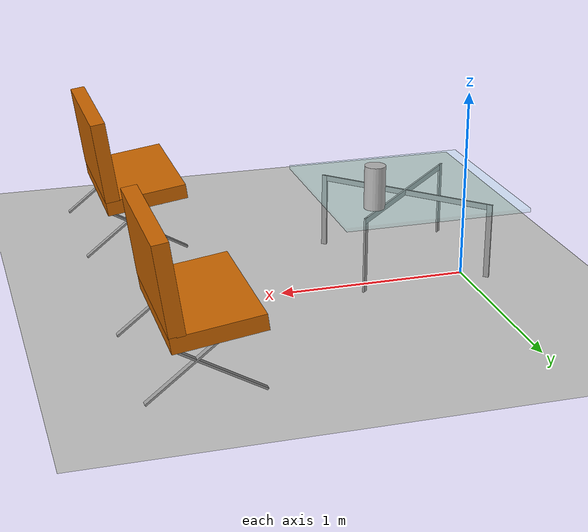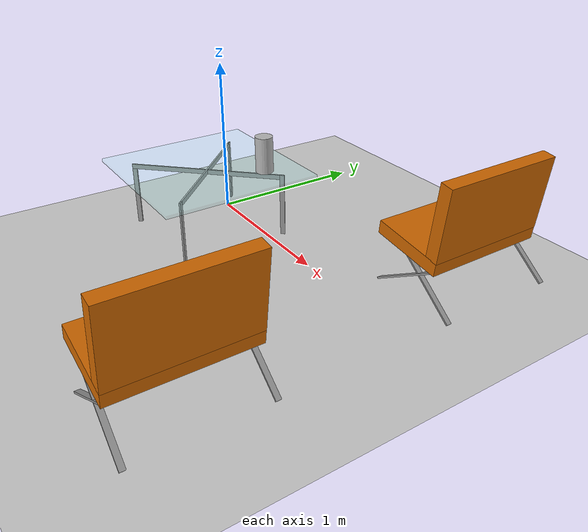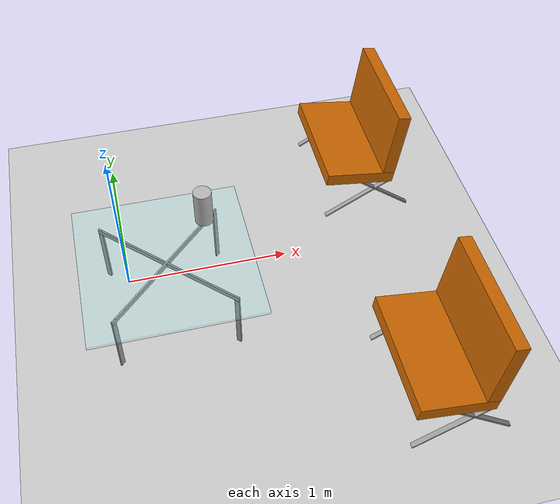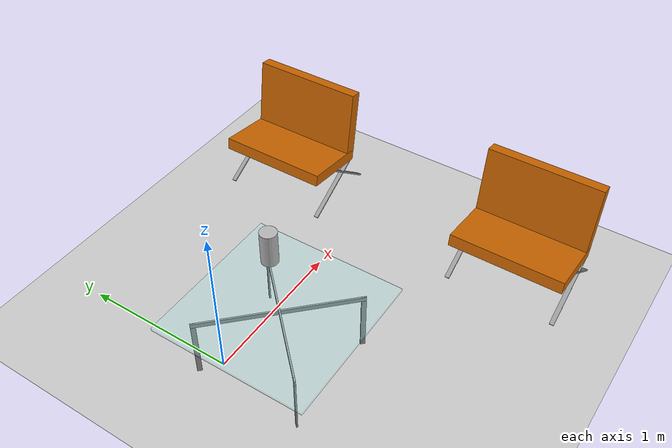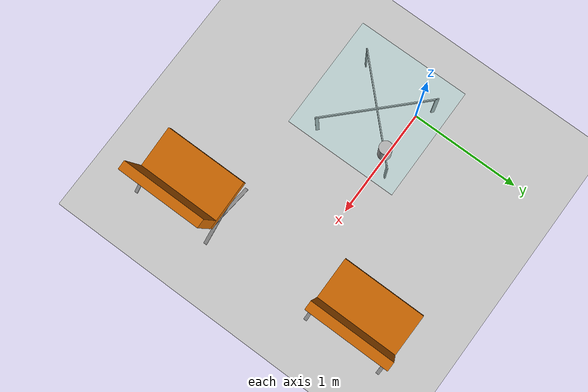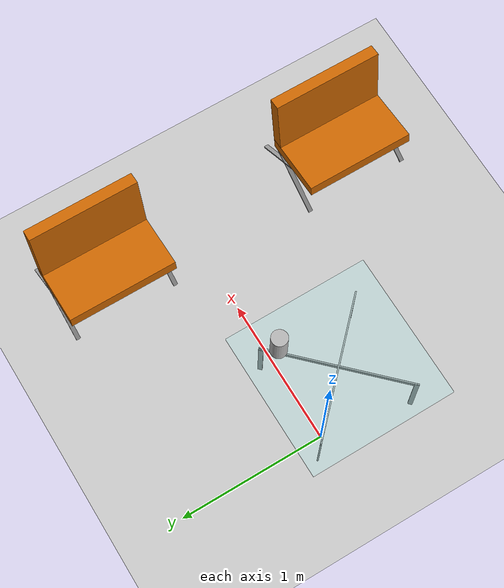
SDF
<sdf version="1.6">
 <world name="default">
  <model name="ground_plane">
   <static>1</static>
   <link name="link">
    <collision name="collision">
     <geometry><plane><normal>0 0 1</normal><size>100 100</size></plane></geometry>
     <surface><friction><ode><mu>100</mu><mu2>50</mu2></ode></friction></surface>
    </collision>
    <visual name="visual">
     <cast_shadows>0</cast_shadows>
     <geometry><plane><normal>0 0 1</normal><size>100 100</size></plane></geometry>
     <material>
      <script><uri>file://media/materials/scripts/gazebo.material</uri><name>Gazebo/Grey</name></script>
     </material>
    </visual>
   </link>
  </model>
  <model name="coffee_table">
   <link name="link_1">
    <pose>1.25379 -1.27559 0.12 0 -0 0.785398</pose>
    <inertial>
     <mass>1</mass>
     <inertia>
      <ixx>0.166667</ixx>
      <ixy>0</ixy>
      <ixz>0</ixz>
      <iyy>0.166667</iyy>
      <iyz>0</iyz>
      <izz>0.166667</izz>
     </inertia>
    </inertial>
    <visual name="visual">
     <geometry><box><size>0.01 0.03 0.41</size></box></geometry>
     <material>
      <lighting>1</lighting>
      <script><uri>file://media/materials/scripts/gazebo.material</uri><name>Gazebo/Grey</name></script>
      <shader type="pixel"><normal_map>__default__</normal_map></shader>
      <ambient>0.75 0.75 0.75 1</ambient>
      <diffuse>0.7 0.7 0.7 1</diffuse>
      <specular>0.01 0.01 0.01 1</specular>
      <emissive>0 0 0 1</emissive>
     </material>
    </visual>
    <collision name="collision">
     <geometry><box><size>0.01 0.03 0.41</size></box></geometry>
     <surface>
      <friction>
       <ode><mu>1</mu><mu2>1</mu2><fdir1>0 0 0</fdir1><slip1>0</slip1><slip2>0</slip2></ode>
       <torsional>
        <coefficient>1</coefficient>
        <patch_radius>0</patch_radius>
        <surface_radius>0</surface_radius>
        <use_patch_radius>1</use_patch_radius>
        <ode><slip>0</slip></ode>
       </torsional>
      </friction>
      <bounce><restitution_coefficient>0</restitution_coefficient><threshold>1e+06</threshold></bounce>
      <contact>
       <collide_without_contact>0</collide_without_contact>
       <collide_without_contact_bitmask>1</collide_without_contact_bitmask>
       <collide_bitmask>1</collide_bitmask>
       <ode>
        <soft_cfm>0</soft_cfm>
        <soft_erp>0.2</soft_erp>
        <kp>1e+13</kp>
        <kd>1</kd>
        <max_vel>0.01</max_vel>
        <min_depth>0</min_depth>
       </ode>
       <bullet>
        <split_impulse>1</split_impulse>
        <split_impulse_penetration_threshold>-0.01</split_impulse_penetration_threshold>
        <soft_cfm>0</soft_cfm>
        <soft_erp>0.2</soft_erp>
        <kp>1e+13</kp>
        <kd>1</kd>
       </bullet>
      </contact>
     </surface>
    </collision>
   </link>
   <link name="link_1_clone">
    <pose>0.567893 -0.589699 0.12 0 -0 0.785398</pose>
    <inertial>
     <mass>1</mass>
     <inertia>
      <ixx>0.166667</ixx>
      <ixy>0</ixy>
      <ixz>0</ixz>
      <iyy>0.166667</iyy>
      <iyz>0</iyz>
      <izz>0.166667</izz>
     </inertia>
    </inertial>
    <visual name="visual">
     <geometry><box><size>0.01 0.03 0.41</size></box></geometry>
     <material>
      <lighting>1</lighting>
      <script><uri>file://media/materials/scripts/gazebo.material</uri><name>Gazebo/Grey</name></script>
      <shader type="pixel"><normal_map>__default__</normal_map></shader>
      <ambient>0.75 0.75 0.75 1</ambient>
      <diffuse>0.7 0.7 0.7 1</diffuse>
      <specular>0.01 0.01 0.01 1</specular>
      <emissive>0 0 0 1</emissive>
     </material>
    </visual>
    <collision name="collision">
     <geometry><box><size>0.01 0.03 0.41</size></box></geometry>
     <surface>
      <friction>
       <ode><mu>1</mu><mu2>1</mu2><fdir1>0 0 0</fdir1><slip1>0</slip1><slip2>0</slip2></ode>
       <torsional>
        <coefficient>1</coefficient>
        <patch_radius>0</patch_radius>
        <surface_radius>0</surface_radius>
        <use_patch_radius>1</use_patch_radius>
        <ode><slip>0</slip></ode>
       </torsional>
      </friction>
      <bounce><restitution_coefficient>0</restitution_coefficient><threshold>1e+06</threshold></bounce>
      <contact>
       <collide_without_contact>0</collide_without_contact>
       <collide_without_contact_bitmask>1</collide_without_contact_bitmask>
       <collide_bitmask>1</collide_bitmask>
       <ode>
        <soft_cfm>0</soft_cfm>
        <soft_erp>0.2</soft_erp>
        <kp>1e+13</kp>
        <kd>1</kd>
        <max_vel>0.01</max_vel>
        <min_depth>0</min_depth>
       </ode>
       <bullet>
        <split_impulse>1</split_impulse>
        <split_impulse_penetration_threshold>-0.01</split_impulse_penetration_threshold>
        <soft_cfm>0</soft_cfm>
        <soft_erp>0.2</soft_erp>
        <kp>1e+13</kp>
        <kd>1</kd>
       </bullet>
      </contact>
     </surface>
    </collision>
   </link>
   <link name="link_1_clone_0">
    <pose>1.25379 -0.589699 0.12 0 0 -0.785398</pose>
    <inertial>
     <mass>1</mass>
     <inertia>
      <ixx>0.166667</ixx>
      <ixy>0</ixy>
      <ixz>0</ixz>
      <iyy>0.166667</iyy>
      <iyz>0</iyz>
      <izz>0.166667</izz>
     </inertia>
    </inertial>
    <visual name="visual">
     <geometry><box><size>0.01 0.03 0.41</size></box></geometry>
     <material>
      <lighting>1</lighting>
      <script><uri>file://media/materials/scripts/gazebo.material</uri><name>Gazebo/Grey</name></script>
      <shader type="pixel"><normal_map>__default__</normal_map></shader>
      <ambient>0.75 0.75 0.75 1</ambient>
      <diffuse>0.7 0.7 0.7 1</diffuse>
      <specular>0.01 0.01 0.01 1</specular>
      <emissive>0 0 0 1</emissive>
     </material>
    </visual>
    <collision name="collision">
     <geometry><box><size>0.01 0.03 0.41</size></box></geometry>
     <surface>
      <friction>
       <ode><mu>1</mu><mu2>1</mu2><fdir1>0 0 0</fdir1><slip1>0</slip1><slip2>0</slip2></ode>
       <torsional>
        <coefficient>1</coefficient>
        <patch_radius>0</patch_radius>
        <surface_radius>0</surface_radius>
        <use_patch_radius>1</use_patch_radius>
        <ode><slip>0</slip></ode>
       </torsional>
      </friction>
      <bounce><restitution_coefficient>0</restitution_coefficient><threshold>1e+06</threshold></bounce>
      <contact>
       <collide_without_contact>0</collide_without_contact>
       <collide_without_contact_bitmask>1</collide_without_contact_bitmask>
       <collide_bitmask>1</collide_bitmask>
       <ode>
        <soft_cfm>0</soft_cfm>
        <soft_erp>0.2</soft_erp>
        <kp>1e+13</kp>
        <kd>1</kd>
        <max_vel>0.01</max_vel>
        <min_depth>0</min_depth>
       </ode>
       <bullet>
        <split_impulse>1</split_impulse>
        <split_impulse_penetration_threshold>-0.01</split_impulse_penetration_threshold>
        <soft_cfm>0</soft_cfm>
        <soft_erp>0.2</soft_erp>
        <kp>1e+13</kp>
        <kd>1</kd>
       </bullet>
      </contact>
     </surface>
    </collision>
   </link>
   <link name="link_1_clone_0_clone">
    <pose>0.567893 -1.27559 0.12 0 0 -0.785398</pose>
    <inertial>
     <mass>1</mass>
     <inertia>
      <ixx>0.166667</ixx>
      <ixy>0</ixy>
      <ixz>0</ixz>
      <iyy>0.166667</iyy>
      <iyz>0</iyz>
      <izz>0.166667</izz>
     </inertia>
    </inertial>
    <visual name="visual">
     <geometry><box><size>0.01 0.03 0.41</size></box></geometry>
     <material>
      <lighting>1</lighting>
      <script><uri>file://media/materials/scripts/gazebo.material</uri><name>Gazebo/Grey</name></script>
      <shader type="pixel"><normal_map>__default__</normal_map></shader>
      <ambient>0.75 0.75 0.75 1</ambient>
      <diffuse>0.7 0.7 0.7 1</diffuse>
      <specular>0.01 0.01 0.01 1</specular>
      <emissive>0 0 0 1</emissive>
     </material>
    </visual>
    <collision name="collision">
     <geometry><box><size>0.01 0.03 0.41</size></box></geometry>
     <surface>
      <friction>
       <ode><mu>1</mu><mu2>1</mu2><fdir1>0 0 0</fdir1><slip1>0</slip1><slip2>0</slip2></ode>
       <torsional>
        <coefficient>1</coefficient>
        <patch_radius>0</patch_radius>
        <surface_radius>0</surface_radius>
        <use_patch_radius>1</use_patch_radius>
        <ode><slip>0</slip></ode>
       </torsional>
      </friction>
      <bounce><restitution_coefficient>0</restitution_coefficient><threshold>1e+06</threshold></bounce>
      <contact>
       <collide_without_contact>0</collide_without_contact>
       <collide_without_contact_bitmask>1</collide_without_contact_bitmask>
       <collide_bitmask>1</collide_bitmask>
       <ode>
        <soft_cfm>0</soft_cfm>
        <soft_erp>0.2</soft_erp>
        <kp>1e+13</kp>
        <kd>1</kd>
        <max_vel>0.01</max_vel>
        <min_depth>0</min_depth>
       </ode>
       <bullet>
        <split_impulse>1</split_impulse>
        <split_impulse_penetration_threshold>-0.01</split_impulse_penetration_threshold>
        <soft_cfm>0</soft_cfm>
        <soft_erp>0.2</soft_erp>
        <kp>1e+13</kp>
        <kd>1</kd>
       </bullet>
      </contact>
     </surface>
    </collision>
   </link>
   <link name="link_2">
    <pose>0.910839 -0.932646 0.31 0 -0 0.785398</pose>
    <inertial>
     <mass>1</mass>
     <inertia>
      <ixx>0.166667</ixx>
      <ixy>0</ixy>
      <ixz>0</ixz>
      <iyy>0.166667</iyy>
      <iyz>0</iyz>
      <izz>0.166667</izz>
     </inertia>
    </inertial>
    <visual name="visual">
     <geometry><box><size>0.01 1 0.03</size></box></geometry>
     <material>
      <lighting>1</lighting>
      <script><uri>file://media/materials/scripts/gazebo.material</uri><name>Gazebo/Grey</name></script>
      <shader type="pixel"><normal_map>__default__</normal_map></shader>
      <ambient>0.75 0.75 0.75 1</ambient>
      <diffuse>0.7 0.7 0.7 1</diffuse>
      <specular>0.01 0.01 0.01 1</specular>
      <emissive>0 0 0 1</emissive>
     </material>
    </visual>
    <collision name="collision">
     <geometry><box><size>0.01 1 0.03</size></box></geometry>
     <surface>
      <friction>
       <ode><mu>1</mu><mu2>1</mu2><fdir1>0 0 0</fdir1><slip1>0</slip1><slip2>0</slip2></ode>
       <torsional>
        <coefficient>1</coefficient>
        <patch_radius>0</patch_radius>
        <surface_radius>0</surface_radius>
        <use_patch_radius>1</use_patch_radius>
        <ode><slip>0</slip></ode>
       </torsional>
      </friction>
      <bounce><restitution_coefficient>0</restitution_coefficient><threshold>1e+06</threshold></bounce>
      <contact>
       <collide_without_contact>0</collide_without_contact>
       <collide_without_contact_bitmask>1</collide_without_contact_bitmask>
       <collide_bitmask>1</collide_bitmask>
       <ode>
        <soft_cfm>0</soft_cfm>
        <soft_erp>0.2</soft_erp>
        <kp>1e+13</kp>
        <kd>1</kd>
        <max_vel>0.01</max_vel>
        <min_depth>0</min_depth>
       </ode>
       <bullet>
        <split_impulse>1</split_impulse>
        <split_impulse_penetration_threshold>-0.01</split_impulse_penetration_threshold>
        <soft_cfm>0</soft_cfm>
        <soft_erp>0.2</soft_erp>
        <kp>1e+13</kp>
        <kd>1</kd>
       </bullet>
      </contact>
     </surface>
    </collision>
   </link>
   <link name="link_2_clone">
    <pose>0.910839 -0.932646 0.31 0 0 -0.785398</pose>
    <inertial>
     <mass>1</mass>
     <inertia>
      <ixx>0.166667</ixx>
      <ixy>0</ixy>
      <ixz>0</ixz>
      <iyy>0.166667</iyy>
      <iyz>0</iyz>
      <izz>0.166667</izz>
     </inertia>
    </inertial>
    <visual name="visual">
     <geometry><box><size>0.01 1 0.03</size></box></geometry>
     <material>
      <lighting>1</lighting>
      <script><uri>file://media/materials/scripts/gazebo.material</uri><name>Gazebo/Grey</name></script>
      <shader type="pixel"><normal_map>__default__</normal_map></shader>
      <ambient>0.75 0.75 0.75 1</ambient>
      <diffuse>0.7 0.7 0.7 1</diffuse>
      <specular>0.01 0.01 0.01 1</specular>
      <emissive>0 0 0 1</emissive>
     </material>
    </visual>
    <collision name="collision">
     <geometry><box><size>0.01 1 0.03</size></box></geometry>
     <surface>
      <friction>
       <ode><mu>1</mu><mu2>1</mu2><fdir1>0 0 0</fdir1><slip1>0</slip1><slip2>0</slip2></ode>
       <torsional>
        <coefficient>1</coefficient>
        <patch_radius>0</patch_radius>
        <surface_radius>0</surface_radius>
        <use_patch_radius>1</use_patch_radius>
        <ode><slip>0</slip></ode>
       </torsional>
      </friction>
      <bounce><restitution_coefficient>0</restitution_coefficient><threshold>1e+06</threshold></bounce>
      <contact>
       <collide_without_contact>0</collide_without_contact>
       <collide_without_contact_bitmask>1</collide_without_contact_bitmask>
       <collide_bitmask>1</collide_bitmask>
       <ode>
        <soft_cfm>0</soft_cfm>
        <soft_erp>0.2</soft_erp>
        <kp>1e+13</kp>
        <kd>1</kd>
        <max_vel>0.01</max_vel>
        <min_depth>0</min_depth>
       </ode>
       <bullet>
        <split_impulse>1</split_impulse>
        <split_impulse_penetration_threshold>-0.01</split_impulse_penetration_threshold>
        <soft_cfm>0</soft_cfm>
        <soft_erp>0.2</soft_erp>
        <kp>1e+13</kp>
        <kd>1</kd>
       </bullet>
      </contact>
     </surface>
    </collision>
   </link>
   <link name="link_4">
    <pose>0.910839 -0.932646 0.335 0 -0 0</pose>
    <inertial>
     <mass>1</mass>
     <inertia>
      <ixx>0.166667</ixx>
      <ixy>0</ixy>
      <ixz>0</ixz>
      <iyy>0.166667</iyy>
      <iyz>0</iyz>
      <izz>0.166667</izz>
     </inertia>
    </inertial>
    <visual name="visual">
     <geometry><box><size>1 1 0.02</size></box></geometry>
     <material>
      <lighting>1</lighting>
      <script><uri>file://media/materials/scripts/gazebo.material</uri><name>Gazebo/Grey</name></script>
      <shader type="pixel"><normal_map>__default__</normal_map></shader>
      <ambient>0.6 1 1 1</ambient>
      <diffuse>0.7 0.7 0.7 1</diffuse>
      <specular>0.01 0.01 0.01 1</specular>
      <emissive>0 0 0 1</emissive>
     </material>
     <transparency>0.85</transparency>
    </visual>
    <collision name="collision">
     <geometry><box><size>1 1 0.02</size></box></geometry>
     <surface>
      <friction>
       <ode><mu>1</mu><mu2>1</mu2><fdir1>0 0 0</fdir1><slip1>0</slip1><slip2>0</slip2></ode>
       <torsional>
        <coefficient>1</coefficient>
        <patch_radius>0</patch_radius>
        <surface_radius>0</surface_radius>
        <use_patch_radius>1</use_patch_radius>
        <ode><slip>0</slip></ode>
       </torsional>
      </friction>
      <bounce><restitution_coefficient>0</restitution_coefficient><threshold>1e+06</threshold></bounce>
      <contact>
       <collide_without_contact>0</collide_without_contact>
       <collide_without_contact_bitmask>1</collide_without_contact_bitmask>
       <collide_bitmask>1</collide_bitmask>
       <ode>
        <soft_cfm>0</soft_cfm>
        <soft_erp>0.2</soft_erp>
        <kp>1e+13</kp>
        <kd>1</kd>
        <max_vel>0.01</max_vel>
        <min_depth>0</min_depth>
       </ode>
       <bullet>
        <split_impulse>1</split_impulse>
        <split_impulse_penetration_threshold>-0.01</split_impulse_penetration_threshold>
        <soft_cfm>0</soft_cfm>
        <soft_erp>0.2</soft_erp>
        <kp>1e+13</kp>
        <kd>1</kd>
       </bullet>
      </contact>
     </surface>
    </collision>
   </link>
   <joint name="link_2_JOINT_0_0" type="fixed">
    <parent>link_2</parent>
    <child>link_4</child>
    <physics>
     <ode><limit><cfm>0</cfm><erp>0.2</erp></limit><suspension><cfm>0</cfm><erp>0.2</erp></suspension></ode>
    </physics>
   </joint>
   <joint name="link_2_JOINT_0" type="fixed">
    <parent>link_2</parent>
    <child>link_1</child>
    <physics>
     <ode><limit><cfm>0</cfm><erp>0.2</erp></limit><suspension><cfm>0</cfm><erp>0.2</erp></suspension></ode>
    </physics>
   </joint>
   <joint name="link_2_JOINT_1_0" type="fixed">
    <parent>link_2</parent>
    <child>link_2_clone</child>
    <physics>
     <ode><limit><cfm>0</cfm><erp>0.2</erp></limit><suspension><cfm>0</cfm><erp>0.2</erp></suspension></ode>
    </physics>
   </joint>
   <joint name="link_2_JOINT_1" type="fixed">
    <parent>link_2</parent>
    <child>link_1_clone</child>
    <physics>
     <ode><limit><cfm>0</cfm><erp>0.2</erp></limit><suspension><cfm>0</cfm><erp>0.2</erp></suspension></ode>
    </physics>
   </joint>
   <joint name="link_2_clone_JOINT_0" type="fixed">
    <parent>link_2_clone</parent>
    <child>link_4</child>
    <physics>
     <ode><limit><cfm>0</cfm><erp>0.2</erp></limit><suspension><cfm>0</cfm><erp>0.2</erp></suspension></ode>
    </physics>
   </joint>
   <joint name="link_2_clone_JOINT_2" type="fixed">
    <parent>link_2_clone</parent>
    <child>link_1_clone_0_clone</child>
    <physics>
     <ode><limit><cfm>0</cfm><erp>0.2</erp></limit><suspension><cfm>0</cfm><erp>0.2</erp></suspension></ode>
    </physics>
   </joint>
   <joint name="link_2_clone_JOINT_3" type="fixed">
    <parent>link_2_clone</parent>
    <child>link_1_clone_0</child>
    <physics>
     <ode><limit><cfm>0</cfm><erp>0.2</erp></limit><suspension><cfm>0</cfm><erp>0.2</erp></suspension></ode>
    </physics>
   </joint>
   <static>0</static>
   <pose>-0.679275 0.675921 0.084997 0 -2e-06 0.004869</pose>
  </model>
  <model name="lounge_chair">
   <link name="link_0">
    <pose>-0.096052 0.046667 0.513201 0 -0.15 0</pose>
    <inertial>
     <mass>0.544036</mass>
     <inertia>
      <ixx>0.0258036</ixx>
      <ixy>0</ixy>
      <ixz>0</ixz>
      <iyy>0.016623</iyy>
      <iyz>0</iyz>
      <izz>0.0418228</izz>
     </inertia>
    </inertial>
    <visual name="visual">
     <geometry><box><size>0.45 0.75 0.08</size></box></geometry>
     <material>
      <lighting>1</lighting>
      <script><uri>file://media/materials/scripts/gazebo.material</uri><name>Gazebo/Grey</name></script>
      <shader type="pixel"><normal_map>__default__</normal_map></shader>
      <ambient>0.8 0.4 0 1</ambient>
      <diffuse>0.7 0.7 0.7 1</diffuse>
      <specular>0.01 0.01 0.01 1</specular>
      <emissive>0 0 0 1</emissive>
     </material>
    </visual>
    <collision name="collision">
     <geometry><box><size>0.45 0.75 0.08</size></box></geometry>
     <surface>
      <friction>
       <ode><mu>1</mu><mu2>1</mu2><fdir1>0 0 0</fdir1><slip1>0</slip1><slip2>0</slip2></ode>
       <torsional>
        <coefficient>1</coefficient>
        <patch_radius>0</patch_radius>
        <surface_radius>0</surface_radius>
        <use_patch_radius>1</use_patch_radius>
        <ode><slip>0</slip></ode>
       </torsional>
      </friction>
      <bounce><restitution_coefficient>0</restitution_coefficient><threshold>1e+06</threshold></bounce>
      <contact>
       <collide_without_contact>0</collide_without_contact>
       <collide_without_contact_bitmask>1</collide_without_contact_bitmask>
       <collide_bitmask>1</collide_bitmask>
       <ode>
        <soft_cfm>0</soft_cfm>
        <soft_erp>0.2</soft_erp>
        <kp>1e+13</kp>
        <kd>1</kd>
        <max_vel>0.01</max_vel>
        <min_depth>0</min_depth>
       </ode>
       <bullet>
        <split_impulse>1</split_impulse>
        <split_impulse_penetration_threshold>-0.01</split_impulse_penetration_threshold>
        <soft_cfm>0</soft_cfm>
        <soft_erp>0.2</soft_erp>
        <kp>1e+13</kp>
        <kd>1</kd>
       </bullet>
      </contact>
     </surface>
    </collision>
   </link>
   <link name="link_0_clone">
    <pose>-0.319159 0.046667 0.742889 3.14159 -1.42159 3.14159</pose>
    <inertial>
     <mass>0.41437</mass>
     <inertia>
      <ixx>0.0196446</ixx>
      <ixy>0</ixy>
      <ixz>0</ixz>
      <iyy>0.00743262</iyy>
      <iyz>0</iyz>
      <izz>0.0266352</izz>
     </inertia>
    </inertial>
    <visual name="visual">
     <geometry><box><size>0.45 0.75 0.08</size></box></geometry>
     <material>
      <lighting>1</lighting>
      <script><uri>file://media/materials/scripts/gazebo.material</uri><name>Gazebo/Grey</name></script>
      <shader type="pixel"><normal_map>__default__</normal_map></shader>
      <ambient>0.8 0.4 0 1</ambient>
      <diffuse>0.7 0.7 0.7 1</diffuse>
      <specular>0.01 0.01 0.01 1</specular>
      <emissive>0 0 0 1</emissive>
     </material>
    </visual>
    <collision name="collision">
     <geometry><box><size>0.45 0.75 0.08</size></box></geometry>
     <surface>
      <friction>
       <ode><mu>1</mu><mu2>1</mu2><fdir1>0 0 0</fdir1><slip1>0</slip1><slip2>0</slip2></ode>
       <torsional>
        <coefficient>1</coefficient>
        <patch_radius>0</patch_radius>
        <surface_radius>0</surface_radius>
        <use_patch_radius>1</use_patch_radius>
        <ode><slip>0</slip></ode>
       </torsional>
      </friction>
      <bounce><restitution_coefficient>0</restitution_coefficient><threshold>1e+06</threshold></bounce>
      <contact>
       <collide_without_contact>0</collide_without_contact>
       <collide_without_contact_bitmask>1</collide_without_contact_bitmask>
       <collide_bitmask>1</collide_bitmask>
       <ode>
        <soft_cfm>0</soft_cfm>
        <soft_erp>0.2</soft_erp>
        <kp>1e+13</kp>
        <kd>1</kd>
        <max_vel>0.01</max_vel>
        <min_depth>0</min_depth>
       </ode>
       <bullet>
        <split_impulse>1</split_impulse>
        <split_impulse_penetration_threshold>-0.01</split_impulse_penetration_threshold>
        <soft_cfm>0</soft_cfm>
        <soft_erp>0.2</soft_erp>
        <kp>1e+13</kp>
        <kd>1</kd>
       </bullet>
      </contact>
     </surface>
    </collision>
   </link>
   <link name="link_2">
    <pose>-0.087065 -0.312224 0.333962 0 -1.05637 0</pose>
    <inertial>
     <mass>0.489913</mass>
     <inertia>
      <ixx>0.00990087</ixx>
      <ixy>0</ixy>
      <ixz>0</ixz>
      <iyy>0.00980288</iyy>
      <iyz>0</iyz>
      <izz>0.00010615</izz>
     </inertia>
    </inertial>
    <visual name="visual">
     <geometry><box><size>0.01 0.03 0.489911</size></box></geometry>
     <material>
      <lighting>1</lighting>
      <script><uri>file://media/materials/scripts/gazebo.material</uri><name>Gazebo/Grey</name></script>
      <shader type="pixel"><normal_map>__default__</normal_map></shader>
      <ambient>0.75 0.75 0.75 1</ambient>
      <diffuse>0.7 0.7 0.7 1</diffuse>
      <specular>0.01 0.01 0.01 1</specular>
      <emissive>0 0 0 1</emissive>
     </material>
    </visual>
    <collision name="collision">
     <geometry><box><size>0.01 0.03 0.489911</size></box></geometry>
     <surface>
      <friction>
       <ode><mu>1</mu><mu2>1</mu2><fdir1>0 0 0</fdir1><slip1>0</slip1><slip2>0</slip2></ode>
       <torsional>
        <coefficient>1</coefficient>
        <patch_radius>0</patch_radius>
        <surface_radius>0</surface_radius>
        <use_patch_radius>1</use_patch_radius>
        <ode><slip>0</slip></ode>
       </torsional>
      </friction>
      <bounce><restitution_coefficient>0</restitution_coefficient><threshold>1e+06</threshold></bounce>
      <contact>
       <collide_without_contact>0</collide_without_contact>
       <collide_without_contact_bitmask>1</collide_without_contact_bitmask>
       <collide_bitmask>1</collide_bitmask>
       <ode>
        <soft_cfm>0</soft_cfm>
        <soft_erp>0.2</soft_erp>
        <kp>1e+13</kp>
        <kd>1</kd>
        <max_vel>0.01</max_vel>
        <min_depth>0</min_depth>
       </ode>
       <bullet>
        <split_impulse>1</split_impulse>
        <split_impulse_penetration_threshold>-0.01</split_impulse_penetration_threshold>
        <soft_cfm>0</soft_cfm>
        <soft_erp>0.2</soft_erp>
        <kp>1e+13</kp>
        <kd>1</kd>
       </bullet>
      </contact>
     </surface>
    </collision>
   </link>
   <link name="link_2_clone">
    <pose>-0.087065 0.406318 0.333962 0 -1.05637 0</pose>
    <inertial>
     <mass>0.489913</mass>
     <inertia>
      <ixx>0.00990087</ixx>
      <ixy>0</ixy>
      <ixz>0</ixz>
      <iyy>0.00980288</iyy>
      <iyz>0</iyz>
      <izz>0.00010615</izz>
     </inertia>
    </inertial>
    <visual name="visual">
     <geometry><box><size>0.01 0.03 0.489911</size></box></geometry>
     <material>
      <lighting>1</lighting>
      <script><uri>file://media/materials/scripts/gazebo.material</uri><name>Gazebo/Grey</name></script>
      <shader type="pixel"><normal_map>__default__</normal_map></shader>
      <ambient>0.75 0.75 0.75 1</ambient>
      <diffuse>0.7 0.7 0.7 1</diffuse>
      <specular>0.01 0.01 0.01 1</specular>
      <emissive>0 0 0 1</emissive>
     </material>
    </visual>
    <collision name="collision">
     <geometry><box><size>0.01 0.03 0.489911</size></box></geometry>
     <surface>
      <friction>
       <ode><mu>1</mu><mu2>1</mu2><fdir1>0 0 0</fdir1><slip1>0</slip1><slip2>0</slip2></ode>
       <torsional>
        <coefficient>1</coefficient>
        <patch_radius>0</patch_radius>
        <surface_radius>0</surface_radius>
        <use_patch_radius>1</use_patch_radius>
        <ode><slip>0</slip></ode>
       </torsional>
      </friction>
      <bounce><restitution_coefficient>0</restitution_coefficient><threshold>1e+06</threshold></bounce>
      <contact>
       <collide_without_contact>0</collide_without_contact>
       <collide_without_contact_bitmask>1</collide_without_contact_bitmask>
       <collide_bitmask>1</collide_bitmask>
       <ode>
        <soft_cfm>0</soft_cfm>
        <soft_erp>0.2</soft_erp>
        <kp>1e+13</kp>
        <kd>1</kd>
        <max_vel>0.01</max_vel>
        <min_depth>0</min_depth>
       </ode>
       <bullet>
        <split_impulse>1</split_impulse>
        <split_impulse_penetration_threshold>-0.01</split_impulse_penetration_threshold>
        <soft_cfm>0</soft_cfm>
        <soft_erp>0.2</soft_erp>
        <kp>1e+13</kp>
        <kd>1</kd>
       </bullet>
      </contact>
     </surface>
    </collision>
   </link>
   <link name="link_2_clone_0">
    <pose>-0.244757 0.405854 0.361914 -3.14159 -0.893765 -3.14159</pose>
    <inertial>
     <mass>0.489913</mass>
     <inertia>
      <ixx>0.00990087</ixx>
      <ixy>0</ixy>
      <ixz>0</ixz>
      <iyy>0.00980288</iyy>
      <iyz>0</iyz>
      <izz>0.00010615</izz>
     </inertia>
    </inertial>
    <visual name="visual">
     <geometry><box><size>0.01 0.03 0.489911</size></box></geometry>
     <material>
      <lighting>1</lighting>
      <script><uri>file://media/materials/scripts/gazebo.material</uri><name>Gazebo/Grey</name></script>
      <shader type="pixel"><normal_map>__default__</normal_map></shader>
      <ambient>0.75 0.75 0.75 1</ambient>
      <diffuse>0.7 0.7 0.7 1</diffuse>
      <specular>0.01 0.01 0.01 1</specular>
      <emissive>0 0 0 1</emissive>
     </material>
    </visual>
    <collision name="collision">
     <geometry><box><size>0.01 0.03 0.489911</size></box></geometry>
     <surface>
      <friction>
       <ode><mu>1</mu><mu2>1</mu2><fdir1>0 0 0</fdir1><slip1>0</slip1><slip2>0</slip2></ode>
       <torsional>
        <coefficient>1</coefficient>
        <patch_radius>0</patch_radius>
        <surface_radius>0</surface_radius>
        <use_patch_radius>1</use_patch_radius>
        <ode><slip>0</slip></ode>
       </torsional>
      </friction>
      <bounce><restitution_coefficient>0</restitution_coefficient><threshold>1e+06</threshold></bounce>
      <contact>
       <collide_without_contact>0</collide_without_contact>
       <collide_without_contact_bitmask>1</collide_without_contact_bitmask>
       <collide_bitmask>1</collide_bitmask>
       <ode>
        <soft_cfm>0</soft_cfm>
        <soft_erp>0.2</soft_erp>
        <kp>1e+13</kp>
        <kd>1</kd>
        <max_vel>0.01</max_vel>
        <min_depth>0</min_depth>
       </ode>
       <bullet>
        <split_impulse>1</split_impulse>
        <split_impulse_penetration_threshold>-0.01</split_impulse_penetration_threshold>
        <soft_cfm>0</soft_cfm>
        <soft_erp>0.2</soft_erp>
        <kp>1e+13</kp>
        <kd>1</kd>
       </bullet>
      </contact>
     </surface>
    </collision>
   </link>
   <link name="link_2_clone_0_clone">
    <pose>-0.244739 -0.313332 0.361914 -3.14159 -0.893765 -3.14159</pose>
    <inertial>
     <mass>0.489913</mass>
     <inertia>
      <ixx>0.00990087</ixx>
      <ixy>0</ixy>
      <ixz>0</ixz>
      <iyy>0.00980288</iyy>
      <iyz>0</iyz>
      <izz>0.00010615</izz>
     </inertia>
    </inertial>
    <visual name="visual">
     <geometry><box><size>0.01 0.03 0.489911</size></box></geometry>
     <material>
      <lighting>1</lighting>
      <script><uri>file://media/materials/scripts/gazebo.material</uri><name>Gazebo/Grey</name></script>
      <shader type="pixel"><normal_map>__default__</normal_map></shader>
      <ambient>0.75 0.75 0.75 1</ambient>
      <diffuse>0.7 0.7 0.7 1</diffuse>
      <specular>0.01 0.01 0.01 1</specular>
      <emissive>0 0 0 1</emissive>
     </material>
    </visual>
    <collision name="collision">
     <geometry><box><size>0.01 0.03 0.489911</size></box></geometry>
     <surface>
      <friction>
       <ode><mu>1</mu><mu2>1</mu2><fdir1>0 0 0</fdir1><slip1>0</slip1><slip2>0</slip2></ode>
       <torsional>
        <coefficient>1</coefficient>
        <patch_radius>0</patch_radius>
        <surface_radius>0</surface_radius>
        <use_patch_radius>1</use_patch_radius>
        <ode><slip>0</slip></ode>
       </torsional>
      </friction>
      <bounce><restitution_coefficient>0</restitution_coefficient><threshold>1e+06</threshold></bounce>
      <contact>
       <collide_without_contact>0</collide_without_contact>
       <collide_without_contact_bitmask>1</collide_without_contact_bitmask>
       <collide_bitmask>1</collide_bitmask>
       <ode>
        <soft_cfm>0</soft_cfm>
        <soft_erp>0.2</soft_erp>
        <kp>1e+13</kp>
        <kd>1</kd>
        <max_vel>0.01</max_vel>
        <min_depth>0</min_depth>
       </ode>
       <bullet>
        <split_impulse>1</split_impulse>
        <split_impulse_penetration_threshold>-0.01</split_impulse_penetration_threshold>
        <soft_cfm>0</soft_cfm>
        <soft_erp>0.2</soft_erp>
        <kp>1e+13</kp>
        <kd>1</kd>
       </bullet>
      </contact>
     </surface>
    </collision>
   </link>
   <joint name="link_0_JOINT_10" type="fixed">
    <parent>link_0</parent>
    <child>link_2_clone</child>
    <physics>
     <ode><limit><cfm>0</cfm><erp>0.2</erp></limit><suspension><cfm>0</cfm><erp>0.2</erp></suspension></ode>
    </physics>
   </joint>
   <joint name="link_0_JOINT_1" type="fixed">
    <parent>link_0</parent>
    <child>link_0_clone</child>
    <physics>
     <ode><limit><cfm>0</cfm><erp>0.2</erp></limit><suspension><cfm>0</cfm><erp>0.2</erp></suspension></ode>
    </physics>
   </joint>
   <joint name="link_0_JOINT_5" type="fixed">
    <parent>link_0</parent>
    <child>link_2_clone_0_clone</child>
    <physics>
     <ode><limit><cfm>0</cfm><erp>0.2</erp></limit><suspension><cfm>0</cfm><erp>0.2</erp></suspension></ode>
    </physics>
   </joint>
   <joint name="link_0_JOINT_8" type="fixed">
    <parent>link_0</parent>
    <child>link_2</child>
    <physics>
     <ode><limit><cfm>0</cfm><erp>0.2</erp></limit><suspension><cfm>0</cfm><erp>0.2</erp></suspension></ode>
    </physics>
   </joint>
   <joint name="link_0_JOINT_9" type="fixed">
    <parent>link_0</parent>
    <child>link_2_clone_0</child>
    <physics>
     <ode><limit><cfm>0</cfm><erp>0.2</erp></limit><suspension><cfm>0</cfm><erp>0.2</erp></suspension></ode>
    </physics>
   </joint>
   <static>0</static>
   <pose>1.46174 -1.07476 -0.208113 -9e-06 0.00811 3.14107</pose>
  </model>
  <model name="lounge_chair_0">
   <link name="link_0">
    <pose>-0.096052 0.046667 0.513201 0 -0.15 0</pose>
    <inertial>
     <mass>0.544036</mass>
     <inertia>
      <ixx>0.0258036</ixx>
      <ixy>0</ixy>
      <ixz>0</ixz>
      <iyy>0.016623</iyy>
      <iyz>0</iyz>
      <izz>0.0418228</izz>
     </inertia>
    </inertial>
    <visual name="visual">
     <geometry><box><size>0.45 0.75 0.08</size></box></geometry>
     <material>
      <lighting>1</lighting>
      <script><uri>file://media/materials/scripts/gazebo.material</uri><name>Gazebo/Grey</name></script>
      <shader type="pixel"><normal_map>__default__</normal_map></shader>
      <ambient>0.8 0.4 0 1</ambient>
      <diffuse>0.7 0.7 0.7 1</diffuse>
      <specular>0.01 0.01 0.01 1</specular>
      <emissive>0 0 0 1</emissive>
     </material>
    </visual>
    <collision name="collision">
     <geometry><box><size>0.45 0.75 0.08</size></box></geometry>
     <surface>
      <friction>
       <ode><mu>1</mu><mu2>1</mu2><fdir1>0 0 0</fdir1><slip1>0</slip1><slip2>0</slip2></ode>
       <torsional>
        <coefficient>1</coefficient>
        <patch_radius>0</patch_radius>
        <surface_radius>0</surface_radius>
        <use_patch_radius>1</use_patch_radius>
        <ode><slip>0</slip></ode>
       </torsional>
      </friction>
      <bounce><restitution_coefficient>0</restitution_coefficient><threshold>1e+06</threshold></bounce>
      <contact>
       <collide_without_contact>0</collide_without_contact>
       <collide_without_contact_bitmask>1</collide_without_contact_bitmask>
       <collide_bitmask>1</collide_bitmask>
       <ode>
        <soft_cfm>0</soft_cfm>
        <soft_erp>0.2</soft_erp>
        <kp>1e+13</kp>
        <kd>1</kd>
        <max_vel>0.01</max_vel>
        <min_depth>0</min_depth>
       </ode>
       <bullet>
        <split_impulse>1</split_impulse>
        <split_impulse_penetration_threshold>-0.01</split_impulse_penetration_threshold>
        <soft_cfm>0</soft_cfm>
        <soft_erp>0.2</soft_erp>
        <kp>1e+13</kp>
        <kd>1</kd>
       </bullet>
      </contact>
     </surface>
    </collision>
   </link>
   <link name="link_0_clone">
    <pose>-0.319159 0.046667 0.742889 3.14159 -1.42159 3.14159</pose>
    <inertial>
     <mass>0.41437</mass>
     <inertia>
      <ixx>0.0196446</ixx>
      <ixy>0</ixy>
      <ixz>0</ixz>
      <iyy>0.00743262</iyy>
      <iyz>0</iyz>
      <izz>0.0266352</izz>
     </inertia>
    </inertial>
    <visual name="visual">
     <geometry><box><size>0.45 0.75 0.08</size></box></geometry>
     <material>
      <lighting>1</lighting>
      <script><uri>file://media/materials/scripts/gazebo.material</uri><name>Gazebo/Grey</name></script>
      <shader type="pixel"><normal_map>__default__</normal_map></shader>
      <ambient>0.8 0.4 0 1</ambient>
      <diffuse>0.7 0.7 0.7 1</diffuse>
      <specular>0.01 0.01 0.01 1</specular>
      <emissive>0 0 0 1</emissive>
     </material>
    </visual>
    <collision name="collision">
     <geometry><box><size>0.45 0.75 0.08</size></box></geometry>
     <surface>
      <friction>
       <ode><mu>1</mu><mu2>1</mu2><fdir1>0 0 0</fdir1><slip1>0</slip1><slip2>0</slip2></ode>
       <torsional>
        <coefficient>1</coefficient>
        <patch_radius>0</patch_radius>
        <surface_radius>0</surface_radius>
        <use_patch_radius>1</use_patch_radius>
        <ode><slip>0</slip></ode>
       </torsional>
      </friction>
      <bounce><restitution_coefficient>0</restitution_coefficient><threshold>1e+06</threshold></bounce>
      <contact>
       <collide_without_contact>0</collide_without_contact>
       <collide_without_contact_bitmask>1</collide_without_contact_bitmask>
       <collide_bitmask>1</collide_bitmask>
       <ode>
        <soft_cfm>0</soft_cfm>
        <soft_erp>0.2</soft_erp>
        <kp>1e+13</kp>
        <kd>1</kd>
        <max_vel>0.01</max_vel>
        <min_depth>0</min_depth>
       </ode>
       <bullet>
        <split_impulse>1</split_impulse>
        <split_impulse_penetration_threshold>-0.01</split_impulse_penetration_threshold>
        <soft_cfm>0</soft_cfm>
        <soft_erp>0.2</soft_erp>
        <kp>1e+13</kp>
        <kd>1</kd>
       </bullet>
      </contact>
     </surface>
    </collision>
   </link>
   <link name="link_2">
    <pose>-0.087065 -0.312224 0.333962 0 -1.05637 0</pose>
    <inertial>
     <mass>0.489913</mass>
     <inertia>
      <ixx>0.00990087</ixx>
      <ixy>0</ixy>
      <ixz>0</ixz>
      <iyy>0.00980288</iyy>
      <iyz>0</iyz>
      <izz>0.00010615</izz>
     </inertia>
    </inertial>
    <visual name="visual">
     <geometry><box><size>0.01 0.03 0.489911</size></box></geometry>
     <material>
      <lighting>1</lighting>
      <script><uri>file://media/materials/scripts/gazebo.material</uri><name>Gazebo/Grey</name></script>
      <shader type="pixel"><normal_map>__default__</normal_map></shader>
      <ambient>0.75 0.75 0.75 1</ambient>
      <diffuse>0.7 0.7 0.7 1</diffuse>
      <specular>0.01 0.01 0.01 1</specular>
      <emissive>0 0 0 1</emissive>
     </material>
    </visual>
    <collision name="collision">
     <geometry><box><size>0.01 0.03 0.489911</size></box></geometry>
     <surface>
      <friction>
       <ode><mu>1</mu><mu2>1</mu2><fdir1>0 0 0</fdir1><slip1>0</slip1><slip2>0</slip2></ode>
       <torsional>
        <coefficient>1</coefficient>
        <patch_radius>0</patch_radius>
        <surface_radius>0</surface_radius>
        <use_patch_radius>1</use_patch_radius>
        <ode><slip>0</slip></ode>
       </torsional>
      </friction>
      <bounce><restitution_coefficient>0</restitution_coefficient><threshold>1e+06</threshold></bounce>
      <contact>
       <collide_without_contact>0</collide_without_contact>
       <collide_without_contact_bitmask>1</collide_without_contact_bitmask>
       <collide_bitmask>1</collide_bitmask>
       <ode>
        <soft_cfm>0</soft_cfm>
        <soft_erp>0.2</soft_erp>
        <kp>1e+13</kp>
        <kd>1</kd>
        <max_vel>0.01</max_vel>
        <min_depth>0</min_depth>
       </ode>
       <bullet>
        <split_impulse>1</split_impulse>
        <split_impulse_penetration_threshold>-0.01</split_impulse_penetration_threshold>
        <soft_cfm>0</soft_cfm>
        <soft_erp>0.2</soft_erp>
        <kp>1e+13</kp>
        <kd>1</kd>
       </bullet>
      </contact>
     </surface>
    </collision>
   </link>
   <link name="link_2_clone">
    <pose>-0.087065 0.406318 0.333962 0 -1.05637 0</pose>
    <inertial>
     <mass>0.489913</mass>
     <inertia>
      <ixx>0.00990087</ixx>
      <ixy>0</ixy>
      <ixz>0</ixz>
      <iyy>0.00980288</iyy>
      <iyz>0</iyz>
      <izz>0.00010615</izz>
     </inertia>
    </inertial>
    <visual name="visual">
     <geometry><box><size>0.01 0.03 0.489911</size></box></geometry>
     <material>
      <lighting>1</lighting>
      <script><uri>file://media/materials/scripts/gazebo.material</uri><name>Gazebo/Grey</name></script>
      <shader type="pixel"><normal_map>__default__</normal_map></shader>
      <ambient>0.75 0.75 0.75 1</ambient>
      <diffuse>0.7 0.7 0.7 1</diffuse>
      <specular>0.01 0.01 0.01 1</specular>
      <emissive>0 0 0 1</emissive>
     </material>
    </visual>
    <collision name="collision">
     <geometry><box><size>0.01 0.03 0.489911</size></box></geometry>
     <surface>
      <friction>
       <ode><mu>1</mu><mu2>1</mu2><fdir1>0 0 0</fdir1><slip1>0</slip1><slip2>0</slip2></ode>
       <torsional>
        <coefficient>1</coefficient>
        <patch_radius>0</patch_radius>
        <surface_radius>0</surface_radius>
        <use_patch_radius>1</use_patch_radius>
        <ode><slip>0</slip></ode>
       </torsional>
      </friction>
      <bounce><restitution_coefficient>0</restitution_coefficient><threshold>1e+06</threshold></bounce>
      <contact>
       <collide_without_contact>0</collide_without_contact>
       <collide_without_contact_bitmask>1</collide_without_contact_bitmask>
       <collide_bitmask>1</collide_bitmask>
       <ode>
        <soft_cfm>0</soft_cfm>
        <soft_erp>0.2</soft_erp>
        <kp>1e+13</kp>
        <kd>1</kd>
        <max_vel>0.01</max_vel>
        <min_depth>0</min_depth>
       </ode>
       <bullet>
        <split_impulse>1</split_impulse>
        <split_impulse_penetration_threshold>-0.01</split_impulse_penetration_threshold>
        <soft_cfm>0</soft_cfm>
        <soft_erp>0.2</soft_erp>
        <kp>1e+13</kp>
        <kd>1</kd>
       </bullet>
      </contact>
     </surface>
    </collision>
   </link>
   <link name="link_2_clone_0">
    <pose>-0.244757 0.405854 0.361914 -3.14159 -0.893765 -3.14159</pose>
    <inertial>
     <mass>0.489913</mass>
     <inertia>
      <ixx>0.00990087</ixx>
      <ixy>0</ixy>
      <ixz>0</ixz>
      <iyy>0.00980288</iyy>
      <iyz>0</iyz>
      <izz>0.00010615</izz>
     </inertia>
    </inertial>
    <visual name="visual">
     <geometry><box><size>0.01 0.03 0.489911</size></box></geometry>
     <material>
      <lighting>1</lighting>
      <script><uri>file://media/materials/scripts/gazebo.material</uri><name>Gazebo/Grey</name></script>
      <shader type="pixel"><normal_map>__default__</normal_map></shader>
      <ambient>0.75 0.75 0.75 1</ambient>
      <diffuse>0.7 0.7 0.7 1</diffuse>
      <specular>0.01 0.01 0.01 1</specular>
      <emissive>0 0 0 1</emissive>
     </material>
    </visual>
    <collision name="collision">
     <geometry><box><size>0.01 0.03 0.489911</size></box></geometry>
     <surface>
      <friction>
       <ode><mu>1</mu><mu2>1</mu2><fdir1>0 0 0</fdir1><slip1>0</slip1><slip2>0</slip2></ode>
       <torsional>
        <coefficient>1</coefficient>
        <patch_radius>0</patch_radius>
        <surface_radius>0</surface_radius>
        <use_patch_radius>1</use_patch_radius>
        <ode><slip>0</slip></ode>
       </torsional>
      </friction>
      <bounce><restitution_coefficient>0</restitution_coefficient><threshold>1e+06</threshold></bounce>
      <contact>
       <collide_without_contact>0</collide_without_contact>
       <collide_without_contact_bitmask>1</collide_without_contact_bitmask>
       <collide_bitmask>1</collide_bitmask>
       <ode>
        <soft_cfm>0</soft_cfm>
        <soft_erp>0.2</soft_erp>
        <kp>1e+13</kp>
        <kd>1</kd>
        <max_vel>0.01</max_vel>
        <min_depth>0</min_depth>
       </ode>
       <bullet>
        <split_impulse>1</split_impulse>
        <split_impulse_penetration_threshold>-0.01</split_impulse_penetration_threshold>
        <soft_cfm>0</soft_cfm>
        <soft_erp>0.2</soft_erp>
        <kp>1e+13</kp>
        <kd>1</kd>
       </bullet>
      </contact>
     </surface>
    </collision>
   </link>
   <link name="link_2_clone_0_clone">
    <pose>-0.244739 -0.313332 0.361914 -3.14159 -0.893765 -3.14159</pose>
    <inertial>
     <mass>0.489913</mass>
     <inertia>
      <ixx>0.00990087</ixx>
      <ixy>0</ixy>
      <ixz>0</ixz>
      <iyy>0.00980288</iyy>
      <iyz>0</iyz>
      <izz>0.00010615</izz>
     </inertia>
    </inertial>
    <visual name="visual">
     <geometry><box><size>0.01 0.03 0.489911</size></box></geometry>
     <material>
      <lighting>1</lighting>
      <script><uri>file://media/materials/scripts/gazebo.material</uri><name>Gazebo/Grey</name></script>
      <shader type="pixel"><normal_map>__default__</normal_map></shader>
      <ambient>0.75 0.75 0.75 1</ambient>
      <diffuse>0.7 0.7 0.7 1</diffuse>
      <specular>0.01 0.01 0.01 1</specular>
      <emissive>0 0 0 1</emissive>
     </material>
    </visual>
    <collision name="collision">
     <geometry><box><size>0.01 0.03 0.489911</size></box></geometry>
     <surface>
      <friction>
       <ode><mu>1</mu><mu2>1</mu2><fdir1>0 0 0</fdir1><slip1>0</slip1><slip2>0</slip2></ode>
       <torsional>
        <coefficient>1</coefficient>
        <patch_radius>0</patch_radius>
        <surface_radius>0</surface_radius>
        <use_patch_radius>1</use_patch_radius>
        <ode><slip>0</slip></ode>
       </torsional>
      </friction>
      <bounce><restitution_coefficient>0</restitution_coefficient><threshold>1e+06</threshold></bounce>
      <contact>
       <collide_without_contact>0</collide_without_contact>
       <collide_without_contact_bitmask>1</collide_without_contact_bitmask>
       <collide_bitmask>1</collide_bitmask>
       <ode>
        <soft_cfm>0</soft_cfm>
        <soft_erp>0.2</soft_erp>
        <kp>1e+13</kp>
        <kd>1</kd>
        <max_vel>0.01</max_vel>
        <min_depth>0</min_depth>
       </ode>
       <bullet>
        <split_impulse>1</split_impulse>
        <split_impulse_penetration_threshold>-0.01</split_impulse_penetration_threshold>
        <soft_cfm>0</soft_cfm>
        <soft_erp>0.2</soft_erp>
        <kp>1e+13</kp>
        <kd>1</kd>
       </bullet>
      </contact>
     </surface>
    </collision>
   </link>
   <joint name="link_0_JOINT_10" type="fixed">
    <parent>link_0</parent>
    <child>link_2_clone</child>
    <physics>
     <ode><limit><cfm>0</cfm><erp>0.2</erp></limit><suspension><cfm>0</cfm><erp>0.2</erp></suspension></ode>
    </physics>
   </joint>
   <joint name="link_0_JOINT_1" type="fixed">
    <parent>link_0</parent>
    <child>link_0_clone</child>
    <physics>
     <ode><limit><cfm>0</cfm><erp>0.2</erp></limit><suspension><cfm>0</cfm><erp>0.2</erp></suspension></ode>
    </physics>
   </joint>
   <joint name="link_0_JOINT_5" type="fixed">
    <parent>link_0</parent>
    <child>link_2_clone_0_clone</child>
    <physics>
     <ode><limit><cfm>0</cfm><erp>0.2</erp></limit><suspension><cfm>0</cfm><erp>0.2</erp></suspension></ode>
    </physics>
   </joint>
   <joint name="link_0_JOINT_8" type="fixed">
    <parent>link_0</parent>
    <child>link_2</child>
    <physics>
     <ode><limit><cfm>0</cfm><erp>0.2</erp></limit><suspension><cfm>0</cfm><erp>0.2</erp></suspension></ode>
    </physics>
   </joint>
   <joint name="link_0_JOINT_9" type="fixed">
    <parent>link_0</parent>
    <child>link_2_clone_0</child>
    <physics>
     <ode><limit><cfm>0</cfm><erp>0.2</erp></limit><suspension><cfm>0</cfm><erp>0.2</erp></suspension></ode>
    </physics>
   </joint>
   <static>0</static>
   <pose>1.47239 0.671171 -0.208107 -1e-06 0.00812 3.14104</pose>
  </model>
  <model name="beer">
   <link name="link">
    <pose>0 0 0.115 0 -0 0</pose>
    <inertial>
     <mass>0.39</mass>
     <inertia><ixx>0.00058</ixx><ixy>0</ixy><ixz>0</ixz><iyy>0.00058</iyy><iyz>0</iyz><izz>0.00019</izz></inertia>
    </inertial>
    <collision name="collision">
     <geometry><cylinder><radius>0.055</radius><length>0.23</length></cylinder></geometry>
    </collision>
    <visual name="visual">
     <geometry><cylinder><radius>0.055</radius><length>0.23</length></cylinder></geometry>
     <material>
      <script>
       <uri>model://beer/materials/scripts</uri>
       <uri>model://beer/materials/textures</uri>
       <name>Beer/Diffuse</name>
      </script>
     </material>
    </visual>
   </link>
   <pose>0.505607 0.011625 0.429998 -1e-06 7.5e-05 -0.006983</pose>
  </model>
 </world>
</sdf>
